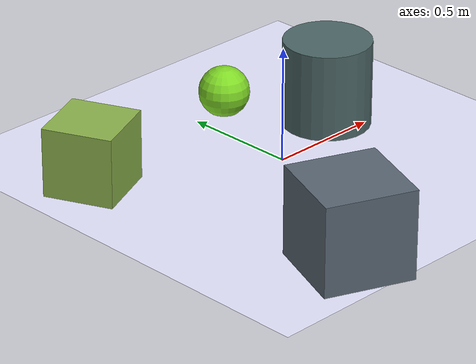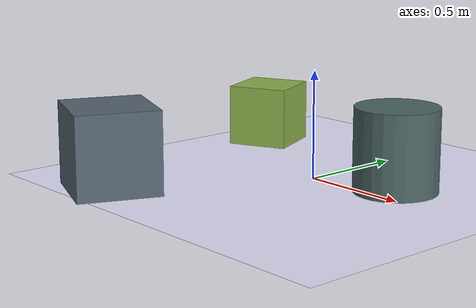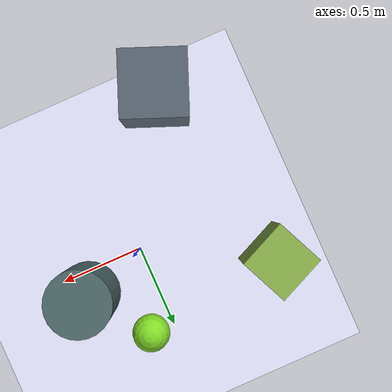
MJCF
<mujoco>
   <asset>
<texture type="skybox" builtin="gradient" rgb1="0.0 0.4 0.3" rgb2="0.8 0.1 0.7" width="256" height="256"/>
<texture name="checker_0" builtin="checker" rgb1="0.3 0.8 0.7" rgb2="0.4 0.0 0.2" width="200" height="200"/>
<texture name="gradient_1" builtin="gradient" rgb1="0.8 0.8 0.2" rgb2="0.2 0.9 0.1" width="200" height="200"/>
<texture name="flat_2" builtin="flat" rgb1="0.3 0.4 0.4" rgb2="0.3 0.4 0.4"  width="200" height="200"/>
<texture name="gradient_3" builtin="gradient" rgb1="0.8 1.0 0.2" rgb2="0.3 0.4 0.4" width="200" height="200"/><material name="checker_0_mat" reflectance="0" texrepeat="2 2" texture="checker_0" texuniform="false" />
<material name="gradient_1_mat" reflectance="0" texture="gradient_1" texuniform="true"/>
<material name="flat_2_mat" reflectance="0" texture="flat_2" texuniform="true"/>
<material name="gradient_3_mat" reflectance="0" texture="gradient_3" texuniform="true"/>
   </asset>

   <worldbody>
      <light diffuse=".9 .9 .9" pos="0 0 3" dir="0 0 -1"/>
     <geom type="plane" size="1 1 0.1" rgba="0.9 0.9 1.0 1"/>
<geom type="box" pos="-0.46 -0.8 0.19" size="0.19 0.19 0.19" material="checker_0_mat" euler="0 0 68" />
<geom type="sphere" pos="0.13 0.47 0.11" size="0.11 0.11 0.11" material="gradient_1_mat" euler="0 0 20" />
<geom type="cylinder" pos="0.39 0.12 0.19" size="0.19 0.19 0.19" material="flat_2_mat" euler="0 0 69" />
<geom type="box" pos="-0.71 0.37 0.15" size="0.15 0.15 0.15" material="gradient_3_mat" euler="0 0 24" /><camera euler="60 0 180" fovy="60" name="camera2" pos="0.2 -1.5 1"></camera>   </worldbody>
</mujoco>
